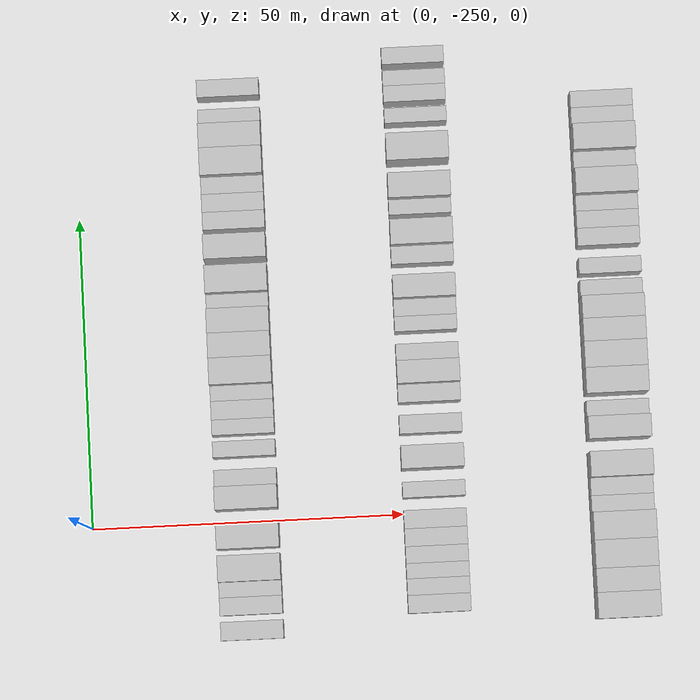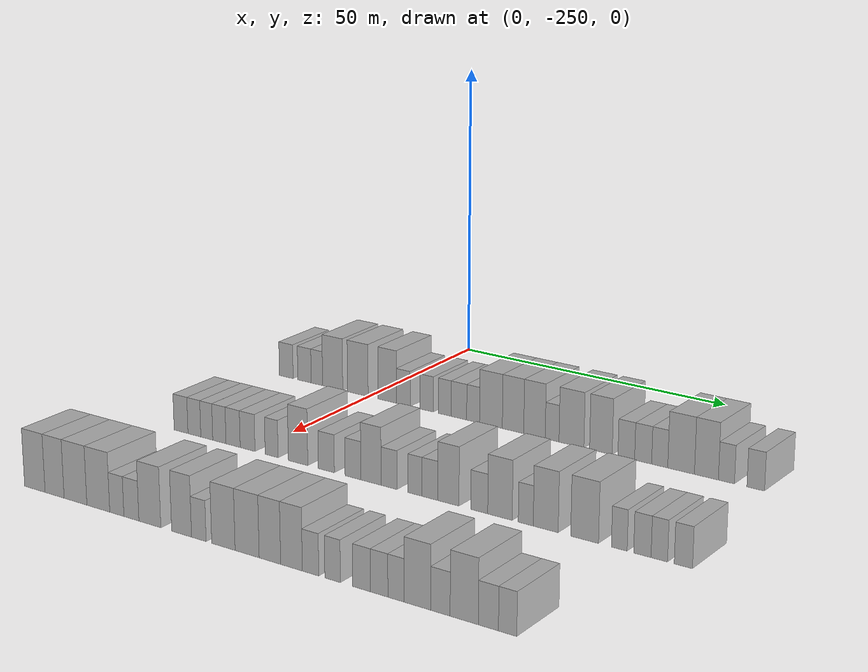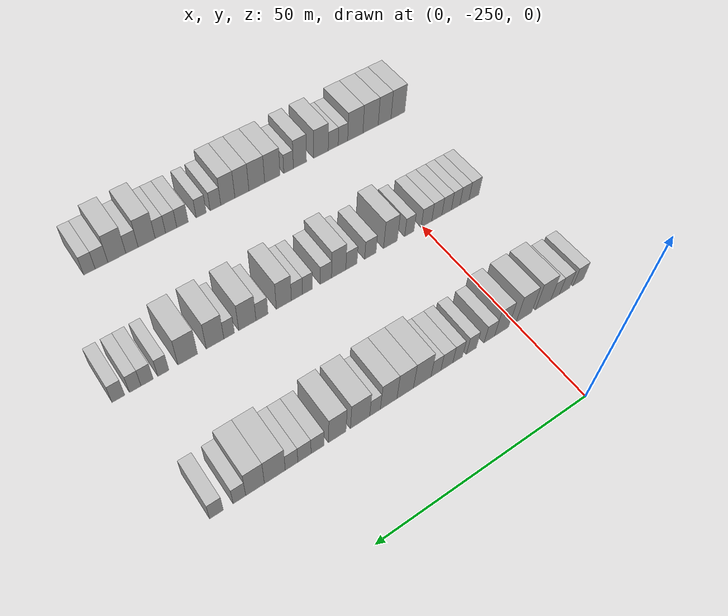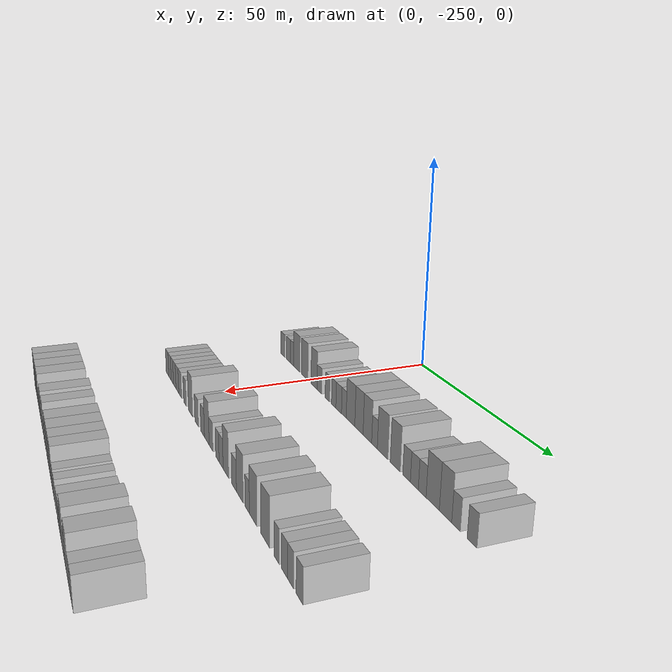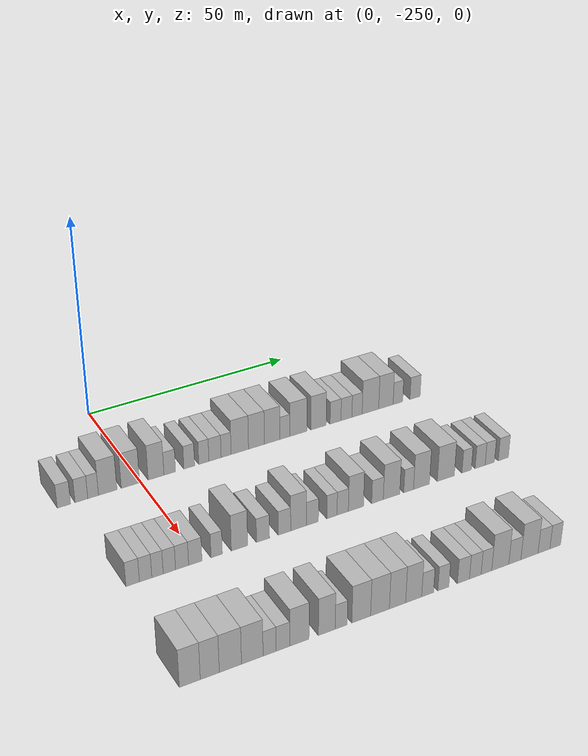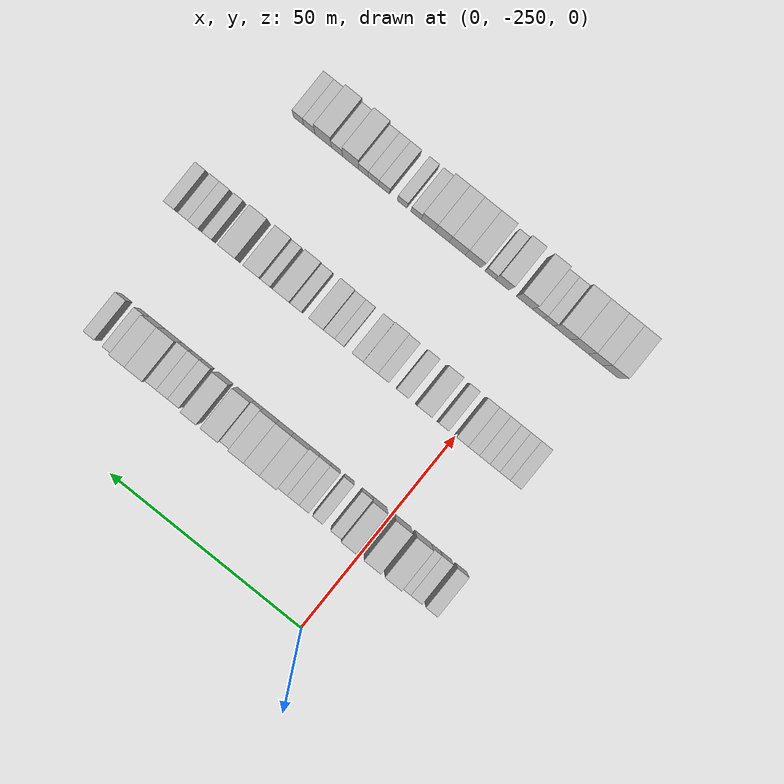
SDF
<sdf version="1.6">
 <world name="default">
  <model name="building_51">
   <static>1</static>
   <pose>25.0000 -267.4422 0 0.000000 0.000000 0.000000</pose>
   <link name="link">
    <pose>0 0 3.00 0 0 0</pose>
    <collision name="collision"><geometry><box><size>10.0000 2.9689 6.0000</size></box></geometry></collision>
    <visual name="visual">
     <cast_shadows>0</cast_shadows>
     <geometry><box><size>10.0000 2.9689 6.0000</size></box></geometry>
     <material>
      <script>
       <uri>model://HANNAS_wall/materials/scripts</uri>
       <uri>model://HANNAS_wall/materials/textures</uri>
       <name>vrc/HANNAS_wall</name>
      </script>
     </material>
    </visual>
   </link>
  </model>
  <model name="building_52">
   <static>1</static>
   <pose>25.0000 -263.5258 0 0.000000 0.000000 0.000000</pose>
   <link name="link">
    <pose>0 0 3.00 0 0 0</pose>
    <collision name="collision"><geometry><box><size>10.0000 2.8640 6.0000</size></box></geometry></collision>
    <visual name="visual">
     <cast_shadows>0</cast_shadows>
     <geometry><box><size>10.0000 2.8640 6.0000</size></box></geometry>
     <material>
      <script>
       <uri>model://HANNAS_wall/materials/scripts</uri>
       <uri>model://HANNAS_wall/materials/textures</uri>
       <name>vrc/HANNAS_wall</name>
      </script>
     </material>
    </visual>
   </link>
  </model>
  <model name="building_53">
   <static>1</static>
   <pose>25.0000 -260.8821 0 0.000000 0.000000 0.000000</pose>
   <link name="link">
    <pose>0 0 3.00 0 0 0</pose>
    <collision name="collision"><geometry><box><size>10.0000 2.4235 6.0000</size></box></geometry></collision>
    <visual name="visual">
     <cast_shadows>0</cast_shadows>
     <geometry><box><size>10.0000 2.4235 6.0000</size></box></geometry>
     <material>
      <script>
       <uri>model://HANNAS_wall/materials/scripts</uri>
       <uri>model://HANNAS_wall/materials/textures</uri>
       <name>vrc/HANNAS_wall</name>
      </script>
     </material>
    </visual>
   </link>
  </model>
  <model name="building_54">
   <static>1</static>
   <pose>25.0000 -257.5606 0 0.000000 0.000000 0.000000</pose>
   <link name="link">
    <pose>0 0 4.50 0 0 0</pose>
    <collision name="collision"><geometry><box><size>10.0000 4.2196 9.0000</size></box></geometry></collision>
    <visual name="visual">
     <cast_shadows>0</cast_shadows>
     <geometry><box><size>10.0000 4.2196 9.0000</size></box></geometry>
     <material>
      <script>
       <uri>model://HANNAS_wall/materials/scripts</uri>
       <uri>model://HANNAS_wall/materials/textures</uri>
       <name>vrc/HANNAS_wall</name>
      </script>
     </material>
    </visual>
   </link>
  </model>
  <model name="building_55">
   <static>1</static>
   <pose>25.0000 -252.3302 0 0.000000 0.000000 0.000000</pose>
   <link name="link">
    <pose>0 0 4.50 0 0 0</pose>
    <collision name="collision"><geometry><box><size>10.0000 4.2412 9.0000</size></box></geometry></collision>
    <visual name="visual">
     <cast_shadows>0</cast_shadows>
     <geometry><box><size>10.0000 4.2412 9.0000</size></box></geometry>
     <material>
      <script>
       <uri>model://HANNAS_wall/materials/scripts</uri>
       <uri>model://HANNAS_wall/materials/textures</uri>
       <name>vrc/HANNAS_wall</name>
      </script>
     </material>
    </visual>
   </link>
  </model>
  <model name="building_56">
   <static>1</static>
   <pose>25.0000 -246.3468 0 0.000000 0.000000 0.000000</pose>
   <link name="link">
    <pose>0 0 4.50 0 0 0</pose>
    <collision name="collision"><geometry><box><size>10.0000 3.7256 9.0000</size></box></geometry></collision>
    <visual name="visual">
     <cast_shadows>0</cast_shadows>
     <geometry><box><size>10.0000 3.7256 9.0000</size></box></geometry>
     <material>
      <script>
       <uri>model://HANNAS_wall/materials/scripts</uri>
       <uri>model://HANNAS_wall/materials/textures</uri>
       <name>vrc/HANNAS_wall</name>
      </script>
     </material>
    </visual>
   </link>
  </model>
  <model name="building_57">
   <static>1</static>
   <pose>25.0000 -243.1115 0 0.000000 0.000000 0.000000</pose>
   <link name="link">
    <pose>0 0 3.00 0 0 0</pose>
    <collision name="collision"><geometry><box><size>10.0000 2.7450 6.0000</size></box></geometry></collision>
    <visual name="visual">
     <cast_shadows>0</cast_shadows>
     <geometry><box><size>10.0000 2.7450 6.0000</size></box></geometry>
     <material>
      <script>
       <uri>model://HANNAS_wall/materials/scripts</uri>
       <uri>model://HANNAS_wall/materials/textures</uri>
       <name>vrc/HANNAS_wall</name>
      </script>
     </material>
    </visual>
   </link>
  </model>
  <model name="building_58">
   <static>1</static>
   <pose>25.0000 -238.4551 0 0.000000 0.000000 0.000000</pose>
   <link name="link">
    <pose>0 0 3.00 0 0 0</pose>
    <collision name="collision"><geometry><box><size>10.0000 2.5678 6.0000</size></box></geometry></collision>
    <visual name="visual">
     <cast_shadows>0</cast_shadows>
     <geometry><box><size>10.0000 2.5678 6.0000</size></box></geometry>
     <material>
      <script>
       <uri>model://HANNAS_wall/materials/scripts</uri>
       <uri>model://HANNAS_wall/materials/textures</uri>
       <name>vrc/HANNAS_wall</name>
      </script>
     </material>
    </visual>
   </link>
  </model>
  <model name="building_59">
   <static>1</static>
   <pose>25.0000 -234.9363 0 0.000000 0.000000 0.000000</pose>
   <link name="link">
    <pose>0 0 3.00 0 0 0</pose>
    <collision name="collision"><geometry><box><size>10.0000 2.4699 6.0000</size></box></geometry></collision>
    <visual name="visual">
     <cast_shadows>0</cast_shadows>
     <geometry><box><size>10.0000 2.4699 6.0000</size></box></geometry>
     <material>
      <script>
       <uri>model://HANNAS_wall/materials/scripts</uri>
       <uri>model://HANNAS_wall/materials/textures</uri>
       <name>vrc/HANNAS_wall</name>
      </script>
     </material>
    </visual>
   </link>
  </model>
  <model name="building_60">
   <static>1</static>
   <pose>25.0000 -232.2082 0 0.000000 0.000000 0.000000</pose>
   <link name="link">
    <pose>0 0 3.00 0 0 0</pose>
    <collision name="collision"><geometry><box><size>10.0000 2.9863 6.0000</size></box></geometry></collision>
    <visual name="visual">
     <cast_shadows>0</cast_shadows>
     <geometry><box><size>10.0000 2.9863 6.0000</size></box></geometry>
     <material>
      <script>
       <uri>model://HANNAS_wall/materials/scripts</uri>
       <uri>model://HANNAS_wall/materials/textures</uri>
       <name>vrc/HANNAS_wall</name>
      </script>
     </material>
    </visual>
   </link>
  </model>
  <model name="building_61">
   <static>1</static>
   <pose>25.0000 -229.4924 0 0.000000 0.000000 0.000000</pose>
   <link name="link">
    <pose>0 0 3.00 0 0 0</pose>
    <collision name="collision"><geometry><box><size>10.0000 2.4453 6.0000</size></box></geometry></collision>
    <visual name="visual">
     <cast_shadows>0</cast_shadows>
     <geometry><box><size>10.0000 2.4453 6.0000</size></box></geometry>
     <material>
      <script>
       <uri>model://HANNAS_wall/materials/scripts</uri>
       <uri>model://HANNAS_wall/materials/textures</uri>
       <name>vrc/HANNAS_wall</name>
      </script>
     </material>
    </visual>
   </link>
  </model>
  <model name="building_62">
   <static>1</static>
   <pose>25.0000 -226.1212 0 0.000000 0.000000 0.000000</pose>
   <link name="link">
    <pose>0 0 4.50 0 0 0</pose>
    <collision name="collision"><geometry><box><size>10.0000 4.2970 9.0000</size></box></geometry></collision>
    <visual name="visual">
     <cast_shadows>0</cast_shadows>
     <geometry><box><size>10.0000 4.2970 9.0000</size></box></geometry>
     <material>
      <script>
       <uri>model://HANNAS_wall/materials/scripts</uri>
       <uri>model://HANNAS_wall/materials/textures</uri>
       <name>vrc/HANNAS_wall</name>
      </script>
     </material>
    </visual>
   </link>
  </model>
  <model name="building_63">
   <static>1</static>
   <pose>25.0000 -221.9860 0 0.000000 0.000000 0.000000</pose>
   <link name="link">
    <pose>0 0 4.50 0 0 0</pose>
    <collision name="collision"><geometry><box><size>10.0000 3.9734 9.0000</size></box></geometry></collision>
    <visual name="visual">
     <cast_shadows>0</cast_shadows>
     <geometry><box><size>10.0000 3.9734 9.0000</size></box></geometry>
     <material>
      <script>
       <uri>model://HANNAS_wall/materials/scripts</uri>
       <uri>model://HANNAS_wall/materials/textures</uri>
       <name>vrc/HANNAS_wall</name>
      </script>
     </material>
    </visual>
   </link>
  </model>
  <model name="building_64">
   <static>1</static>
   <pose>25.0000 -218.0341 0 0.000000 0.000000 0.000000</pose>
   <link name="link">
    <pose>0 0 4.50 0 0 0</pose>
    <collision name="collision"><geometry><box><size>10.0000 3.9305 9.0000</size></box></geometry></collision>
    <visual name="visual">
     <cast_shadows>0</cast_shadows>
     <geometry><box><size>10.0000 3.9305 9.0000</size></box></geometry>
     <material>
      <script>
       <uri>model://HANNAS_wall/materials/scripts</uri>
       <uri>model://HANNAS_wall/materials/textures</uri>
       <name>vrc/HANNAS_wall</name>
      </script>
     </material>
    </visual>
   </link>
  </model>
  <model name="building_65">
   <static>1</static>
   <pose>25.0000 -214.8226 0 0.000000 0.000000 0.000000</pose>
   <link name="link">
    <pose>0 0 3.00 0 0 0</pose>
    <collision name="collision"><geometry><box><size>10.0000 2.4924 6.0000</size></box></geometry></collision>
    <visual name="visual">
     <cast_shadows>0</cast_shadows>
     <geometry><box><size>10.0000 2.4924 6.0000</size></box></geometry>
     <material>
      <script>
       <uri>model://HANNAS_wall/materials/scripts</uri>
       <uri>model://HANNAS_wall/materials/textures</uri>
       <name>vrc/HANNAS_wall</name>
      </script>
     </material>
    </visual>
   </link>
  </model>
  <model name="building_66">
   <static>1</static>
   <pose>25.0000 -211.3515 0 0.000000 0.000000 0.000000</pose>
   <link name="link">
    <pose>0 0 4.50 0 0 0</pose>
    <collision name="collision"><geometry><box><size>10.0000 4.4497 9.0000</size></box></geometry></collision>
    <visual name="visual">
     <cast_shadows>0</cast_shadows>
     <geometry><box><size>10.0000 4.4497 9.0000</size></box></geometry>
     <material>
      <script>
       <uri>model://HANNAS_wall/materials/scripts</uri>
       <uri>model://HANNAS_wall/materials/textures</uri>
       <name>vrc/HANNAS_wall</name>
      </script>
     </material>
    </visual>
   </link>
  </model>
  <model name="building_67">
   <static>1</static>
   <pose>25.0000 -206.1416 0 0.000000 0.000000 0.000000</pose>
   <link name="link">
    <pose>0 0 4.50 0 0 0</pose>
    <collision name="collision"><geometry><box><size>10.0000 3.9701 9.0000</size></box></geometry></collision>
    <visual name="visual">
     <cast_shadows>0</cast_shadows>
     <geometry><box><size>10.0000 3.9701 9.0000</size></box></geometry>
     <material>
      <script>
       <uri>model://HANNAS_wall/materials/scripts</uri>
       <uri>model://HANNAS_wall/materials/textures</uri>
       <name>vrc/HANNAS_wall</name>
      </script>
     </material>
    </visual>
   </link>
  </model>
  <model name="building_68">
   <static>1</static>
   <pose>25.0000 -201.7186 0 0.000000 0.000000 0.000000</pose>
   <link name="link">
    <pose>0 0 3.00 0 0 0</pose>
    <collision name="collision"><geometry><box><size>10.0000 2.8760 6.0000</size></box></geometry></collision>
    <visual name="visual">
     <cast_shadows>0</cast_shadows>
     <geometry><box><size>10.0000 2.8760 6.0000</size></box></geometry>
     <material>
      <script>
       <uri>model://HANNAS_wall/materials/scripts</uri>
       <uri>model://HANNAS_wall/materials/textures</uri>
       <name>vrc/HANNAS_wall</name>
      </script>
     </material>
    </visual>
   </link>
  </model>
  <model name="building_69">
   <static>1</static>
   <pose>25.0000 -198.8304 0 0.000000 0.000000 0.000000</pose>
   <link name="link">
    <pose>0 0 3.00 0 0 0</pose>
    <collision name="collision"><geometry><box><size>10.0000 2.9005 6.0000</size></box></geometry></collision>
    <visual name="visual">
     <cast_shadows>0</cast_shadows>
     <geometry><box><size>10.0000 2.9005 6.0000</size></box></geometry>
     <material>
      <script>
       <uri>model://HANNAS_wall/materials/scripts</uri>
       <uri>model://HANNAS_wall/materials/textures</uri>
       <name>vrc/HANNAS_wall</name>
      </script>
     </material>
    </visual>
   </link>
  </model>
  <model name="building_70">
   <static>1</static>
   <pose>25.0000 -196.0169 0 0.000000 0.000000 0.000000</pose>
   <link name="link">
    <pose>0 0 3.00 0 0 0</pose>
    <collision name="collision"><geometry><box><size>10.0000 2.7263 6.0000</size></box></geometry></collision>
    <visual name="visual">
     <cast_shadows>0</cast_shadows>
     <geometry><box><size>10.0000 2.7263 6.0000</size></box></geometry>
     <material>
      <script>
       <uri>model://HANNAS_wall/materials/scripts</uri>
       <uri>model://HANNAS_wall/materials/textures</uri>
       <name>vrc/HANNAS_wall</name>
      </script>
     </material>
    </visual>
   </link>
  </model>
  <model name="building_71">
   <static>1</static>
   <pose>25.0000 -192.4291 0 0.000000 0.000000 0.000000</pose>
   <link name="link">
    <pose>0 0 4.50 0 0 0</pose>
    <collision name="collision"><geometry><box><size>10.0000 4.4493 9.0000</size></box></geometry></collision>
    <visual name="visual">
     <cast_shadows>0</cast_shadows>
     <geometry><box><size>10.0000 4.4493 9.0000</size></box></geometry>
     <material>
      <script>
       <uri>model://HANNAS_wall/materials/scripts</uri>
       <uri>model://HANNAS_wall/materials/textures</uri>
       <name>vrc/HANNAS_wall</name>
      </script>
     </material>
    </visual>
   </link>
  </model>
  <model name="building_72">
   <static>1</static>
   <pose>25.0000 -188.2410 0 0.000000 0.000000 0.000000</pose>
   <link name="link">
    <pose>0 0 4.50 0 0 0</pose>
    <collision name="collision"><geometry><box><size>10.0000 3.9269 9.0000</size></box></geometry></collision>
    <visual name="visual">
     <cast_shadows>0</cast_shadows>
     <geometry><box><size>10.0000 3.9269 9.0000</size></box></geometry>
     <material>
      <script>
       <uri>model://HANNAS_wall/materials/scripts</uri>
       <uri>model://HANNAS_wall/materials/textures</uri>
       <name>vrc/HANNAS_wall</name>
      </script>
     </material>
    </visual>
   </link>
  </model>
  <model name="building_73">
   <static>1</static>
   <pose>25.0000 -184.9720 0 0.000000 0.000000 0.000000</pose>
   <link name="link">
    <pose>0 0 3.00 0 0 0</pose>
    <collision name="collision"><geometry><box><size>10.0000 2.6112 6.0000</size></box></geometry></collision>
    <visual name="visual">
     <cast_shadows>0</cast_shadows>
     <geometry><box><size>10.0000 2.6112 6.0000</size></box></geometry>
     <material>
      <script>
       <uri>model://HANNAS_wall/materials/scripts</uri>
       <uri>model://HANNAS_wall/materials/textures</uri>
       <name>vrc/HANNAS_wall</name>
      </script>
     </material>
    </visual>
   </link>
  </model>
  <model name="building_74">
   <static>1</static>
   <pose>25.0000 -180.2651 0 0.000000 0.000000 0.000000</pose>
   <link name="link">
    <pose>0 0 3.00 0 0 0</pose>
    <collision name="collision"><geometry><box><size>10.0000 2.8026 6.0000</size></box></geometry></collision>
    <visual name="visual">
     <cast_shadows>0</cast_shadows>
     <geometry><box><size>10.0000 2.8026 6.0000</size></box></geometry>
     <material>
      <script>
       <uri>model://HANNAS_wall/materials/scripts</uri>
       <uri>model://HANNAS_wall/materials/textures</uri>
       <name>vrc/HANNAS_wall</name>
      </script>
     </material>
    </visual>
   </link>
  </model>
  <model name="building_278">
   <static>1</static>
   <pose>55.0000 -264.5786 0 0.000000 0.000000 0.000000</pose>
   <link name="link">
    <pose>0 0 3.00 0 0 0</pose>
    <collision name="collision"><geometry><box><size>10.0000 2.8686 6.0000</size></box></geometry></collision>
    <visual name="visual">
     <cast_shadows>0</cast_shadows>
     <geometry><box><size>10.0000 2.8686 6.0000</size></box></geometry>
     <material>
      <script>
       <uri>model://HANNAS_wall/materials/scripts</uri>
       <uri>model://HANNAS_wall/materials/textures</uri>
       <name>vrc/HANNAS_wall</name>
      </script>
     </material>
    </visual>
   </link>
  </model>
  <model name="building_279">
   <static>1</static>
   <pose>55.0000 -261.8214 0 0.000000 0.000000 0.000000</pose>
   <link name="link">
    <pose>0 0 3.00 0 0 0</pose>
    <collision name="collision"><geometry><box><size>10.0000 2.6457 6.0000</size></box></geometry></collision>
    <visual name="visual">
     <cast_shadows>0</cast_shadows>
     <geometry><box><size>10.0000 2.6457 6.0000</size></box></geometry>
     <material>
      <script>
       <uri>model://HANNAS_wall/materials/scripts</uri>
       <uri>model://HANNAS_wall/materials/textures</uri>
       <name>vrc/HANNAS_wall</name>
      </script>
     </material>
    </visual>
   </link>
  </model>
  <model name="building_280">
   <static>1</static>
   <pose>55.0000 -259.2781 0 0.000000 0.000000 0.000000</pose>
   <link name="link">
    <pose>0 0 3.00 0 0 0</pose>
    <collision name="collision"><geometry><box><size>10.0000 2.4410 6.0000</size></box></geometry></collision>
    <visual name="visual">
     <cast_shadows>0</cast_shadows>
     <geometry><box><size>10.0000 2.4410 6.0000</size></box></geometry>
     <material>
      <script>
       <uri>model://HANNAS_wall/materials/scripts</uri>
       <uri>model://HANNAS_wall/materials/textures</uri>
       <name>vrc/HANNAS_wall</name>
      </script>
     </material>
    </visual>
   </link>
  </model>
  <model name="building_281">
   <static>1</static>
   <pose>55.0000 -256.7174 0 0.000000 0.000000 0.000000</pose>
   <link name="link">
    <pose>0 0 3.00 0 0 0</pose>
    <collision name="collision"><geometry><box><size>10.0000 2.6803 6.0000</size></box></geometry></collision>
    <visual name="visual">
     <cast_shadows>0</cast_shadows>
     <geometry><box><size>10.0000 2.6803 6.0000</size></box></geometry>
     <material>
      <script>
       <uri>model://HANNAS_wall/materials/scripts</uri>
       <uri>model://HANNAS_wall/materials/textures</uri>
       <name>vrc/HANNAS_wall</name>
      </script>
     </material>
    </visual>
   </link>
  </model>
  <model name="building_282">
   <static>1</static>
   <pose>55.0000 -253.9548 0 0.000000 0.000000 0.000000</pose>
   <link name="link">
    <pose>0 0 3.00 0 0 0</pose>
    <collision name="collision"><geometry><box><size>10.0000 2.8451 6.0000</size></box></geometry></collision>
    <visual name="visual">
     <cast_shadows>0</cast_shadows>
     <geometry><box><size>10.0000 2.8451 6.0000</size></box></geometry>
     <material>
      <script>
       <uri>model://HANNAS_wall/materials/scripts</uri>
       <uri>model://HANNAS_wall/materials/textures</uri>
       <name>vrc/HANNAS_wall</name>
      </script>
     </material>
    </visual>
   </link>
  </model>
  <model name="building_283">
   <static>1</static>
   <pose>55.0000 -251.0664 0 0.000000 0.000000 0.000000</pose>
   <link name="link">
    <pose>0 0 3.00 0 0 0</pose>
    <collision name="collision"><geometry><box><size>10.0000 2.9316 6.0000</size></box></geometry></collision>
    <visual name="visual">
     <cast_shadows>0</cast_shadows>
     <geometry><box><size>10.0000 2.9316 6.0000</size></box></geometry>
     <material>
      <script>
       <uri>model://HANNAS_wall/materials/scripts</uri>
       <uri>model://HANNAS_wall/materials/textures</uri>
       <name>vrc/HANNAS_wall</name>
      </script>
     </material>
    </visual>
   </link>
  </model>
  <model name="building_284">
   <static>1</static>
   <pose>55.0000 -246.3401 0 0.000000 0.000000 0.000000</pose>
   <link name="link">
    <pose>0 0 3.00 0 0 0</pose>
    <collision name="collision"><geometry><box><size>10.0000 2.5211 6.0000</size></box></geometry></collision>
    <visual name="visual">
     <cast_shadows>0</cast_shadows>
     <geometry><box><size>10.0000 2.5211 6.0000</size></box></geometry>
     <material>
      <script>
       <uri>model://HANNAS_wall/materials/scripts</uri>
       <uri>model://HANNAS_wall/materials/textures</uri>
       <name>vrc/HANNAS_wall</name>
      </script>
     </material>
    </visual>
   </link>
  </model>
  <model name="building_285">
   <static>1</static>
   <pose>55.0000 -241.2288 0 0.000000 0.000000 0.000000</pose>
   <link name="link">
    <pose>0 0 4.50 0 0 0</pose>
    <collision name="collision"><geometry><box><size>10.0000 3.7014 9.0000</size></box></geometry></collision>
    <visual name="visual">
     <cast_shadows>0</cast_shadows>
     <geometry><box><size>10.0000 3.7014 9.0000</size></box></geometry>
     <material>
      <script>
       <uri>model://HANNAS_wall/materials/scripts</uri>
       <uri>model://HANNAS_wall/materials/textures</uri>
       <name>vrc/HANNAS_wall</name>
      </script>
     </material>
    </visual>
   </link>
  </model>
  <model name="building_286">
   <static>1</static>
   <pose>55.0000 -235.8785 0 0.000000 0.000000 0.000000</pose>
   <link name="link">
    <pose>0 0 3.00 0 0 0</pose>
    <collision name="collision"><geometry><box><size>10.0000 2.9991 6.0000</size></box></geometry></collision>
    <visual name="visual">
     <cast_shadows>0</cast_shadows>
     <geometry><box><size>10.0000 2.9991 6.0000</size></box></geometry>
     <material>
      <script>
       <uri>model://HANNAS_wall/materials/scripts</uri>
       <uri>model://HANNAS_wall/materials/textures</uri>
       <name>vrc/HANNAS_wall</name>
      </script>
     </material>
    </visual>
   </link>
  </model>
  <model name="building_287">
   <static>1</static>
   <pose>55.0000 -230.9327 0 0.000000 0.000000 0.000000</pose>
   <link name="link">
    <pose>0 0 3.00 0 0 0</pose>
    <collision name="collision"><geometry><box><size>10.0000 2.8925 6.0000</size></box></geometry></collision>
    <visual name="visual">
     <cast_shadows>0</cast_shadows>
     <geometry><box><size>10.0000 2.8925 6.0000</size></box></geometry>
     <material>
      <script>
       <uri>model://HANNAS_wall/materials/scripts</uri>
       <uri>model://HANNAS_wall/materials/textures</uri>
       <name>vrc/HANNAS_wall</name>
      </script>
     </material>
    </visual>
   </link>
  </model>
  <model name="building_288">
   <static>1</static>
   <pose>55.0000 -227.6500 0 0.000000 0.000000 0.000000</pose>
   <link name="link">
    <pose>0 0 4.50 0 0 0</pose>
    <collision name="collision"><geometry><box><size>10.0000 3.6728 9.0000</size></box></geometry></collision>
    <visual name="visual">
     <cast_shadows>0</cast_shadows>
     <geometry><box><size>10.0000 3.6728 9.0000</size></box></geometry>
     <material>
      <script>
       <uri>model://HANNAS_wall/materials/scripts</uri>
       <uri>model://HANNAS_wall/materials/textures</uri>
       <name>vrc/HANNAS_wall</name>
      </script>
     </material>
    </visual>
   </link>
  </model>
  <model name="building_289">
   <static>1</static>
   <pose>55.0000 -224.3910 0 0.000000 0.000000 0.000000</pose>
   <link name="link">
    <pose>0 0 3.00 0 0 0</pose>
    <collision name="collision"><geometry><box><size>10.0000 2.8452 6.0000</size></box></geometry></collision>
    <visual name="visual">
     <cast_shadows>0</cast_shadows>
     <geometry><box><size>10.0000 2.8452 6.0000</size></box></geometry>
     <material>
      <script>
       <uri>model://HANNAS_wall/materials/scripts</uri>
       <uri>model://HANNAS_wall/materials/textures</uri>
       <name>vrc/HANNAS_wall</name>
      </script>
     </material>
    </visual>
   </link>
  </model>
  <model name="building_290">
   <static>1</static>
   <pose>55.0000 -219.7482 0 0.000000 0.000000 0.000000</pose>
   <link name="link">
    <pose>0 0 3.00 0 0 0</pose>
    <collision name="collision"><geometry><box><size>10.0000 2.4405 6.0000</size></box></geometry></collision>
    <visual name="visual">
     <cast_shadows>0</cast_shadows>
     <geometry><box><size>10.0000 2.4405 6.0000</size></box></geometry>
     <material>
      <script>
       <uri>model://HANNAS_wall/materials/scripts</uri>
       <uri>model://HANNAS_wall/materials/textures</uri>
       <name>vrc/HANNAS_wall</name>
      </script>
     </material>
    </visual>
   </link>
  </model>
  <model name="building_291">
   <static>1</static>
   <pose>55.0000 -217.1616 0 0.000000 0.000000 0.000000</pose>
   <link name="link">
    <pose>0 0 3.00 0 0 0</pose>
    <collision name="collision"><geometry><box><size>10.0000 2.7326 6.0000</size></box></geometry></collision>
    <visual name="visual">
     <cast_shadows>0</cast_shadows>
     <geometry><box><size>10.0000 2.7326 6.0000</size></box></geometry>
     <material>
      <script>
       <uri>model://HANNAS_wall/materials/scripts</uri>
       <uri>model://HANNAS_wall/materials/textures</uri>
       <name>vrc/HANNAS_wall</name>
      </script>
     </material>
    </visual>
   </link>
  </model>
  <model name="building_292">
   <static>1</static>
   <pose>55.0000 -213.9571 0 0.000000 0.000000 0.000000</pose>
   <link name="link">
    <pose>0 0 4.50 0 0 0</pose>
    <collision name="collision"><geometry><box><size>10.0000 3.6764 9.0000</size></box></geometry></collision>
    <visual name="visual">
     <cast_shadows>0</cast_shadows>
     <geometry><box><size>10.0000 3.6764 9.0000</size></box></geometry>
     <material>
      <script>
       <uri>model://HANNAS_wall/materials/scripts</uri>
       <uri>model://HANNAS_wall/materials/textures</uri>
       <name>vrc/HANNAS_wall</name>
      </script>
     </material>
    </visual>
   </link>
  </model>
  <model name="building_293">
   <static>1</static>
   <pose>55.0000 -208.6810 0 0.000000 0.000000 0.000000</pose>
   <link name="link">
    <pose>0 0 3.00 0 0 0</pose>
    <collision name="collision"><geometry><box><size>10.0000 2.8758 6.0000</size></box></geometry></collision>
    <visual name="visual">
     <cast_shadows>0</cast_shadows>
     <geometry><box><size>10.0000 2.8758 6.0000</size></box></geometry>
     <material>
      <script>
       <uri>model://HANNAS_wall/materials/scripts</uri>
       <uri>model://HANNAS_wall/materials/textures</uri>
       <name>vrc/HANNAS_wall</name>
      </script>
     </material>
    </visual>
   </link>
  </model>
  <model name="building_294">
   <static>1</static>
   <pose>55.0000 -205.2013 0 0.000000 0.000000 0.000000</pose>
   <link name="link">
    <pose>0 0 4.50 0 0 0</pose>
    <collision name="collision"><geometry><box><size>10.0000 4.0836 9.0000</size></box></geometry></collision>
    <visual name="visual">
     <cast_shadows>0</cast_shadows>
     <geometry><box><size>10.0000 4.0836 9.0000</size></box></geometry>
     <material>
      <script>
       <uri>model://HANNAS_wall/materials/scripts</uri>
       <uri>model://HANNAS_wall/materials/textures</uri>
       <name>vrc/HANNAS_wall</name>
      </script>
     </material>
    </visual>
   </link>
  </model>
  <model name="building_295">
   <static>1</static>
   <pose>55.0000 -200.9335 0 0.000000 0.000000 0.000000</pose>
   <link name="link">
    <pose>0 0 3.00 0 0 0</pose>
    <collision name="collision"><geometry><box><size>10.0000 2.4520 6.0000</size></box></geometry></collision>
    <visual name="visual">
     <cast_shadows>0</cast_shadows>
     <geometry><box><size>10.0000 2.4520 6.0000</size></box></geometry>
     <material>
      <script>
       <uri>model://HANNAS_wall/materials/scripts</uri>
       <uri>model://HANNAS_wall/materials/textures</uri>
       <name>vrc/HANNAS_wall</name>
      </script>
     </material>
    </visual>
   </link>
  </model>
  <model name="building_296">
   <static>1</static>
   <pose>55.0000 -197.6918 0 0.000000 0.000000 0.000000</pose>
   <link name="link">
    <pose>0 0 4.50 0 0 0</pose>
    <collision name="collision"><geometry><box><size>10.0000 4.0313 9.0000</size></box></geometry></collision>
    <visual name="visual">
     <cast_shadows>0</cast_shadows>
     <geometry><box><size>10.0000 4.0313 9.0000</size></box></geometry>
     <material>
      <script>
       <uri>model://HANNAS_wall/materials/scripts</uri>
       <uri>model://HANNAS_wall/materials/textures</uri>
       <name>vrc/HANNAS_wall</name>
      </script>
     </material>
    </visual>
   </link>
  </model>
  <model name="building_297">
   <static>1</static>
   <pose>55.0000 -191.4814 0 0.000000 0.000000 0.000000</pose>
   <link name="link">
    <pose>0 0 4.50 0 0 0</pose>
    <collision name="collision"><geometry><box><size>10.0000 4.3895 9.0000</size></box></geometry></collision>
    <visual name="visual">
     <cast_shadows>0</cast_shadows>
     <geometry><box><size>10.0000 4.3895 9.0000</size></box></geometry>
     <material>
      <script>
       <uri>model://HANNAS_wall/materials/scripts</uri>
       <uri>model://HANNAS_wall/materials/textures</uri>
       <name>vrc/HANNAS_wall</name>
      </script>
     </material>
    </visual>
   </link>
  </model>
  <model name="building_298">
   <static>1</static>
   <pose>55.0000 -186.0693 0 0.000000 0.000000 0.000000</pose>
   <link name="link">
    <pose>0 0 3.00 0 0 0</pose>
    <collision name="collision"><geometry><box><size>10.0000 2.4346 6.0000</size></box></geometry></collision>
    <visual name="visual">
     <cast_shadows>0</cast_shadows>
     <geometry><box><size>10.0000 2.4346 6.0000</size></box></geometry>
     <material>
      <script>
       <uri>model://HANNAS_wall/materials/scripts</uri>
       <uri>model://HANNAS_wall/materials/textures</uri>
       <name>vrc/HANNAS_wall</name>
      </script>
     </material>
    </visual>
   </link>
  </model>
  <model name="building_299">
   <static>1</static>
   <pose>55.0000 -182.5320 0 0.000000 0.000000 0.000000</pose>
   <link name="link">
    <pose>0 0 3.00 0 0 0</pose>
    <collision name="collision"><geometry><box><size>10.0000 2.6399 6.0000</size></box></geometry></collision>
    <visual name="visual">
     <cast_shadows>0</cast_shadows>
     <geometry><box><size>10.0000 2.6399 6.0000</size></box></geometry>
     <material>
      <script>
       <uri>model://HANNAS_wall/materials/scripts</uri>
       <uri>model://HANNAS_wall/materials/textures</uri>
       <name>vrc/HANNAS_wall</name>
      </script>
     </material>
    </visual>
   </link>
  </model>
  <model name="building_300">
   <static>1</static>
   <pose>55.0000 -179.9702 0 0.000000 0.000000 0.000000</pose>
   <link name="link">
    <pose>0 0 3.00 0 0 0</pose>
    <collision name="collision"><geometry><box><size>10.0000 2.4838 6.0000</size></box></geometry></collision>
    <visual name="visual">
     <cast_shadows>0</cast_shadows>
     <geometry><box><size>10.0000 2.4838 6.0000</size></box></geometry>
     <material>
      <script>
       <uri>model://HANNAS_wall/materials/scripts</uri>
       <uri>model://HANNAS_wall/materials/textures</uri>
       <name>vrc/HANNAS_wall</name>
      </script>
     </material>
    </visual>
   </link>
  </model>
  <model name="building_301">
   <static>1</static>
   <pose>55.0000 -176.3768 0 0.000000 0.000000 0.000000</pose>
   <link name="link">
    <pose>0 0 3.00 0 0 0</pose>
    <collision name="collision"><geometry><box><size>10.0000 2.7030 6.0000</size></box></geometry></collision>
    <visual name="visual">
     <cast_shadows>0</cast_shadows>
     <geometry><box><size>10.0000 2.7030 6.0000</size></box></geometry>
     <material>
      <script>
       <uri>model://HANNAS_wall/materials/scripts</uri>
       <uri>model://HANNAS_wall/materials/textures</uri>
       <name>vrc/HANNAS_wall</name>
      </script>
     </material>
    </visual>
   </link>
  </model>
  <model name="building_509">
   <static>1</static>
   <pose>85.0000 -266.2261 0 0.000000 0.000000 0.000000</pose>
   <link name="link">
    <pose>0 0 4.50 0 0 0</pose>
    <collision name="collision"><geometry><box><size>10.0000 4.1552 9.0000</size></box></geometry></collision>
    <visual name="visual">
     <cast_shadows>0</cast_shadows>
     <geometry><box><size>10.0000 4.1552 9.0000</size></box></geometry>
     <material>
      <script>
       <uri>model://HANNAS_wall/materials/scripts</uri>
       <uri>model://HANNAS_wall/materials/textures</uri>
       <name>vrc/HANNAS_wall</name>
      </script>
     </material>
    </visual>
   </link>
  </model>
  <model name="building_510">
   <static>1</static>
   <pose>85.0000 -262.2406 0 0.000000 0.000000 0.000000</pose>
   <link name="link">
    <pose>0 0 4.50 0 0 0</pose>
    <collision name="collision"><geometry><box><size>10.0000 3.8158 9.0000</size></box></geometry></collision>
    <visual name="visual">
     <cast_shadows>0</cast_shadows>
     <geometry><box><size>10.0000 3.8158 9.0000</size></box></geometry>
     <material>
      <script>
       <uri>model://HANNAS_wall/materials/scripts</uri>
       <uri>model://HANNAS_wall/materials/textures</uri>
       <name>vrc/HANNAS_wall</name>
      </script>
     </material>
    </visual>
   </link>
  </model>
  <model name="building_511">
   <static>1</static>
   <pose>85.0000 -258.0838 0 0.000000 0.000000 0.000000</pose>
   <link name="link">
    <pose>0 0 4.50 0 0 0</pose>
    <collision name="collision"><geometry><box><size>10.0000 4.4978 9.0000</size></box></geometry></collision>
    <visual name="visual">
     <cast_shadows>0</cast_shadows>
     <geometry><box><size>10.0000 4.4978 9.0000</size></box></geometry>
     <material>
      <script>
       <uri>model://HANNAS_wall/materials/scripts</uri>
       <uri>model://HANNAS_wall/materials/textures</uri>
       <name>vrc/HANNAS_wall</name>
      </script>
     </material>
    </visual>
   </link>
  </model>
  <model name="building_512">
   <static>1</static>
   <pose>85.0000 -253.6161 0 0.000000 0.000000 0.000000</pose>
   <link name="link">
    <pose>0 0 4.50 0 0 0</pose>
    <collision name="collision"><geometry><box><size>10.0000 4.4377 9.0000</size></box></geometry></collision>
    <visual name="visual">
     <cast_shadows>0</cast_shadows>
     <geometry><box><size>10.0000 4.4377 9.0000</size></box></geometry>
     <material>
      <script>
       <uri>model://HANNAS_wall/materials/scripts</uri>
       <uri>model://HANNAS_wall/materials/textures</uri>
       <name>vrc/HANNAS_wall</name>
      </script>
     </material>
    </visual>
   </link>
  </model>
  <model name="building_513">
   <static>1</static>
   <pose>85.0000 -250.0430 0 0.000000 0.000000 0.000000</pose>
   <link name="link">
    <pose>0 0 3.00 0 0 0</pose>
    <collision name="collision"><geometry><box><size>10.0000 2.7085 6.0000</size></box></geometry></collision>
    <visual name="visual">
     <cast_shadows>0</cast_shadows>
     <geometry><box><size>10.0000 2.7085 6.0000</size></box></geometry>
     <material>
      <script>
       <uri>model://HANNAS_wall/materials/scripts</uri>
       <uri>model://HANNAS_wall/materials/textures</uri>
       <name>vrc/HANNAS_wall</name>
      </script>
     </material>
    </visual>
   </link>
  </model>
  <model name="building_514">
   <static>1</static>
   <pose>85.0000 -247.2674 0 0.000000 0.000000 0.000000</pose>
   <link name="link">
    <pose>0 0 3.00 0 0 0</pose>
    <collision name="collision"><geometry><box><size>10.0000 2.8426 6.0000</size></box></geometry></collision>
    <visual name="visual">
     <cast_shadows>0</cast_shadows>
     <geometry><box><size>10.0000 2.8426 6.0000</size></box></geometry>
     <material>
      <script>
       <uri>model://HANNAS_wall/materials/scripts</uri>
       <uri>model://HANNAS_wall/materials/textures</uri>
       <name>vrc/HANNAS_wall</name>
      </script>
     </material>
    </visual>
   </link>
  </model>
  <model name="building_515">
   <static>1</static>
   <pose>85.0000 -243.8001 0 0.000000 0.000000 0.000000</pose>
   <link name="link">
    <pose>0 0 4.50 0 0 0</pose>
    <collision name="collision"><geometry><box><size>10.0000 4.0920 9.0000</size></box></geometry></collision>
    <visual name="visual">
     <cast_shadows>0</cast_shadows>
     <geometry><box><size>10.0000 4.0920 9.0000</size></box></geometry>
     <material>
      <script>
       <uri>model://HANNAS_wall/materials/scripts</uri>
       <uri>model://HANNAS_wall/materials/textures</uri>
       <name>vrc/HANNAS_wall</name>
      </script>
     </material>
    </visual>
   </link>
  </model>
  <model name="building_516">
   <static>1</static>
   <pose>85.0000 -237.9429 0 0.000000 0.000000 0.000000</pose>
   <link name="link">
    <pose>0 0 4.50 0 0 0</pose>
    <collision name="collision"><geometry><box><size>10.0000 3.6225 9.0000</size></box></geometry></collision>
    <visual name="visual">
     <cast_shadows>0</cast_shadows>
     <geometry><box><size>10.0000 3.6225 9.0000</size></box></geometry>
     <material>
      <script>
       <uri>model://HANNAS_wall/materials/scripts</uri>
       <uri>model://HANNAS_wall/materials/textures</uri>
       <name>vrc/HANNAS_wall</name>
      </script>
     </material>
    </visual>
   </link>
  </model>
  <model name="building_517">
   <static>1</static>
   <pose>85.0000 -234.8204 0 0.000000 0.000000 0.000000</pose>
   <link name="link">
    <pose>0 0 3.00 0 0 0</pose>
    <collision name="collision"><geometry><box><size>10.0000 2.6225 6.0000</size></box></geometry></collision>
    <visual name="visual">
     <cast_shadows>0</cast_shadows>
     <geometry><box><size>10.0000 2.6225 6.0000</size></box></geometry>
     <material>
      <script>
       <uri>model://HANNAS_wall/materials/scripts</uri>
       <uri>model://HANNAS_wall/materials/textures</uri>
       <name>vrc/HANNAS_wall</name>
      </script>
     </material>
    </visual>
   </link>
  </model>
  <model name="building_518">
   <static>1</static>
   <pose>85.0000 -230.4392 0 0.000000 0.000000 0.000000</pose>
   <link name="link">
    <pose>0 0 4.50 0 0 0</pose>
    <collision name="collision"><geometry><box><size>10.0000 4.1401 9.0000</size></box></geometry></collision>
    <visual name="visual">
     <cast_shadows>0</cast_shadows>
     <geometry><box><size>10.0000 4.1401 9.0000</size></box></geometry>
     <material>
      <script>
       <uri>model://HANNAS_wall/materials/scripts</uri>
       <uri>model://HANNAS_wall/materials/textures</uri>
       <name>vrc/HANNAS_wall</name>
      </script>
     </material>
    </visual>
   </link>
  </model>
  <model name="building_519">
   <static>1</static>
   <pose>85.0000 -226.2755 0 0.000000 0.000000 0.000000</pose>
   <link name="link">
    <pose>0 0 4.50 0 0 0</pose>
    <collision name="collision"><geometry><box><size>10.0000 4.1871 9.0000</size></box></geometry></collision>
    <visual name="visual">
     <cast_shadows>0</cast_shadows>
     <geometry><box><size>10.0000 4.1871 9.0000</size></box></geometry>
     <material>
      <script>
       <uri>model://HANNAS_wall/materials/scripts</uri>
       <uri>model://HANNAS_wall/materials/textures</uri>
       <name>vrc/HANNAS_wall</name>
      </script>
     </material>
    </visual>
   </link>
  </model>
  <model name="building_520">
   <static>1</static>
   <pose>85.0000 -222.3454 0 0.000000 0.000000 0.000000</pose>
   <link name="link">
    <pose>0 0 4.50 0 0 0</pose>
    <collision name="collision"><geometry><box><size>10.0000 3.6731 9.0000</size></box></geometry></collision>
    <visual name="visual">
     <cast_shadows>0</cast_shadows>
     <geometry><box><size>10.0000 3.6731 9.0000</size></box></geometry>
     <material>
      <script>
       <uri>model://HANNAS_wall/materials/scripts</uri>
       <uri>model://HANNAS_wall/materials/textures</uri>
       <name>vrc/HANNAS_wall</name>
      </script>
     </material>
    </visual>
   </link>
  </model>
  <model name="building_521">
   <static>1</static>
   <pose>85.0000 -218.6821 0 0.000000 0.000000 0.000000</pose>
   <link name="link">
    <pose>0 0 4.50 0 0 0</pose>
    <collision name="collision"><geometry><box><size>10.0000 3.6536 9.0000</size></box></geometry></collision>
    <visual name="visual">
     <cast_shadows>0</cast_shadows>
     <geometry><box><size>10.0000 3.6536 9.0000</size></box></geometry>
     <material>
      <script>
       <uri>model://HANNAS_wall/materials/scripts</uri>
       <uri>model://HANNAS_wall/materials/textures</uri>
       <name>vrc/HANNAS_wall</name>
      </script>
     </material>
    </visual>
   </link>
  </model>
  <model name="building_522">
   <static>1</static>
   <pose>85.0000 -215.4901 0 0.000000 0.000000 0.000000</pose>
   <link name="link">
    <pose>0 0 3.00 0 0 0</pose>
    <collision name="collision"><geometry><box><size>10.0000 2.7303 6.0000</size></box></geometry></collision>
    <visual name="visual">
     <cast_shadows>0</cast_shadows>
     <geometry><box><size>10.0000 2.7303 6.0000</size></box></geometry>
     <material>
      <script>
       <uri>model://HANNAS_wall/materials/scripts</uri>
       <uri>model://HANNAS_wall/materials/textures</uri>
       <name>vrc/HANNAS_wall</name>
      </script>
     </material>
    </visual>
   </link>
  </model>
  <model name="building_523">
   <static>1</static>
   <pose>85.0000 -211.8502 0 0.000000 0.000000 0.000000</pose>
   <link name="link">
    <pose>0 0 3.00 0 0 0</pose>
    <collision name="collision"><geometry><box><size>10.0000 2.5495 6.0000</size></box></geometry></collision>
    <visual name="visual">
     <cast_shadows>0</cast_shadows>
     <geometry><box><size>10.0000 2.5495 6.0000</size></box></geometry>
     <material>
      <script>
       <uri>model://HANNAS_wall/materials/scripts</uri>
       <uri>model://HANNAS_wall/materials/textures</uri>
       <name>vrc/HANNAS_wall</name>
      </script>
     </material>
    </visual>
   </link>
  </model>
  <model name="building_524">
   <static>1</static>
   <pose>85.0000 -207.1551 0 0.000000 0.000000 0.000000</pose>
   <link name="link">
    <pose>0 0 3.00 0 0 0</pose>
    <collision name="collision"><geometry><box><size>10.0000 2.8406 6.0000</size></box></geometry></collision>
    <visual name="visual">
     <cast_shadows>0</cast_shadows>
     <geometry><box><size>10.0000 2.8406 6.0000</size></box></geometry>
     <material>
      <script>
       <uri>model://HANNAS_wall/materials/scripts</uri>
       <uri>model://HANNAS_wall/materials/textures</uri>
       <name>vrc/HANNAS_wall</name>
      </script>
     </material>
    </visual>
   </link>
  </model>
  <model name="building_525">
   <static>1</static>
   <pose>85.0000 -204.3542 0 0.000000 0.000000 0.000000</pose>
   <link name="link">
    <pose>0 0 3.00 0 0 0</pose>
    <collision name="collision"><geometry><box><size>10.0000 2.7613 6.0000</size></box></geometry></collision>
    <visual name="visual">
     <cast_shadows>0</cast_shadows>
     <geometry><box><size>10.0000 2.7613 6.0000</size></box></geometry>
     <material>
      <script>
       <uri>model://HANNAS_wall/materials/scripts</uri>
       <uri>model://HANNAS_wall/materials/textures</uri>
       <name>vrc/HANNAS_wall</name>
      </script>
     </material>
    </visual>
   </link>
  </model>
  <model name="building_526">
   <static>1</static>
   <pose>85.0000 -201.7068 0 0.000000 0.000000 0.000000</pose>
   <link name="link">
    <pose>0 0 3.00 0 0 0</pose>
    <collision name="collision"><geometry><box><size>10.0000 2.5336 6.0000</size></box></geometry></collision>
    <visual name="visual">
     <cast_shadows>0</cast_shadows>
     <geometry><box><size>10.0000 2.5336 6.0000</size></box></geometry>
     <material>
      <script>
       <uri>model://HANNAS_wall/materials/scripts</uri>
       <uri>model://HANNAS_wall/materials/textures</uri>
       <name>vrc/HANNAS_wall</name>
      </script>
     </material>
    </visual>
   </link>
  </model>
  <model name="building_527">
   <static>1</static>
   <pose>85.0000 -198.3778 0 0.000000 0.000000 0.000000</pose>
   <link name="link">
    <pose>0 0 4.50 0 0 0</pose>
    <collision name="collision"><geometry><box><size>10.0000 4.1243 9.0000</size></box></geometry></collision>
    <visual name="visual">
     <cast_shadows>0</cast_shadows>
     <geometry><box><size>10.0000 4.1243 9.0000</size></box></geometry>
     <material>
      <script>
       <uri>model://HANNAS_wall/materials/scripts</uri>
       <uri>model://HANNAS_wall/materials/textures</uri>
       <name>vrc/HANNAS_wall</name>
      </script>
     </material>
    </visual>
   </link>
  </model>
  <model name="building_528">
   <static>1</static>
   <pose>85.0000 -194.8457 0 0.000000 0.000000 0.000000</pose>
   <link name="link">
    <pose>0 0 3.00 0 0 0</pose>
    <collision name="collision"><geometry><box><size>10.0000 2.9398 6.0000</size></box></geometry></collision>
    <visual name="visual">
     <cast_shadows>0</cast_shadows>
     <geometry><box><size>10.0000 2.9398 6.0000</size></box></geometry>
     <material>
      <script>
       <uri>model://HANNAS_wall/materials/scripts</uri>
       <uri>model://HANNAS_wall/materials/textures</uri>
       <name>vrc/HANNAS_wall</name>
      </script>
     </material>
    </visual>
   </link>
  </model>
  <model name="building_529">
   <static>1</static>
   <pose>85.0000 -191.2663 0 0.000000 0.000000 0.000000</pose>
   <link name="link">
    <pose>0 0 4.50 0 0 0</pose>
    <collision name="collision"><geometry><box><size>10.0000 4.2190 9.0000</size></box></geometry></collision>
    <visual name="visual">
     <cast_shadows>0</cast_shadows>
     <geometry><box><size>10.0000 4.2190 9.0000</size></box></geometry>
     <material>
      <script>
       <uri>model://HANNAS_wall/materials/scripts</uri>
       <uri>model://HANNAS_wall/materials/textures</uri>
       <name>vrc/HANNAS_wall</name>
      </script>
     </material>
    </visual>
   </link>
  </model>
  <model name="building_530">
   <static>1</static>
   <pose>85.0000 -187.6759 0 0.000000 0.000000 0.000000</pose>
   <link name="link">
    <pose>0 0 3.00 0 0 0</pose>
    <collision name="collision"><geometry><box><size>10.0000 2.9617 6.0000</size></box></geometry></collision>
    <visual name="visual">
     <cast_shadows>0</cast_shadows>
     <geometry><box><size>10.0000 2.9617 6.0000</size></box></geometry>
     <material>
      <script>
       <uri>model://HANNAS_wall/materials/scripts</uri>
       <uri>model://HANNAS_wall/materials/textures</uri>
       <name>vrc/HANNAS_wall</name>
      </script>
     </material>
    </visual>
   </link>
  </model>
  <model name="building_531">
   <static>1</static>
   <pose>85.0000 -184.8611 0 0.000000 0.000000 0.000000</pose>
   <link name="link">
    <pose>0 0 3.00 0 0 0</pose>
    <collision name="collision"><geometry><box><size>10.0000 2.6680 6.0000</size></box></geometry></collision>
    <visual name="visual">
     <cast_shadows>0</cast_shadows>
     <geometry><box><size>10.0000 2.6680 6.0000</size></box></geometry>
     <material>
      <script>
       <uri>model://HANNAS_wall/materials/scripts</uri>
       <uri>model://HANNAS_wall/materials/textures</uri>
       <name>vrc/HANNAS_wall</name>
      </script>
     </material>
    </visual>
   </link>
  </model>
 </world>
</sdf>
